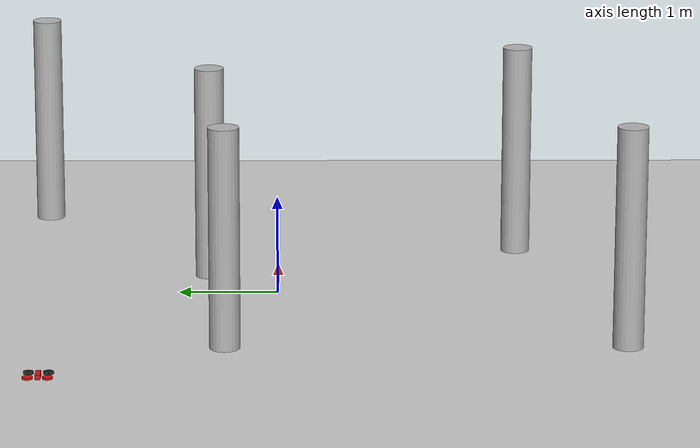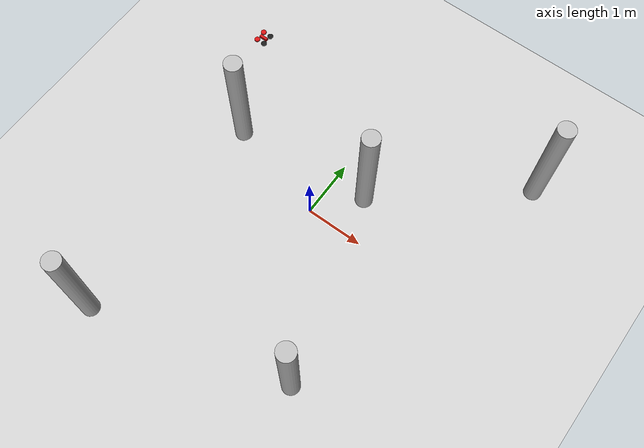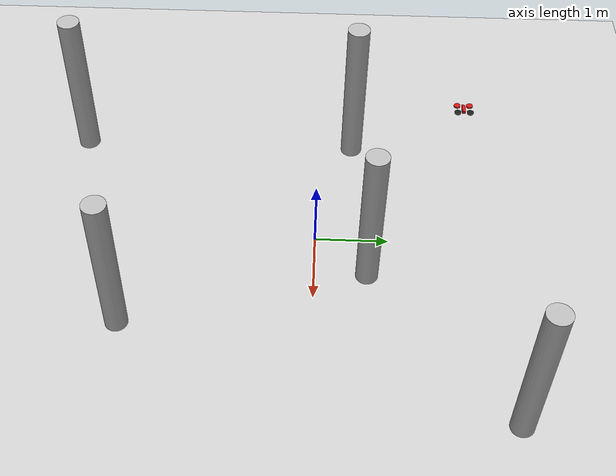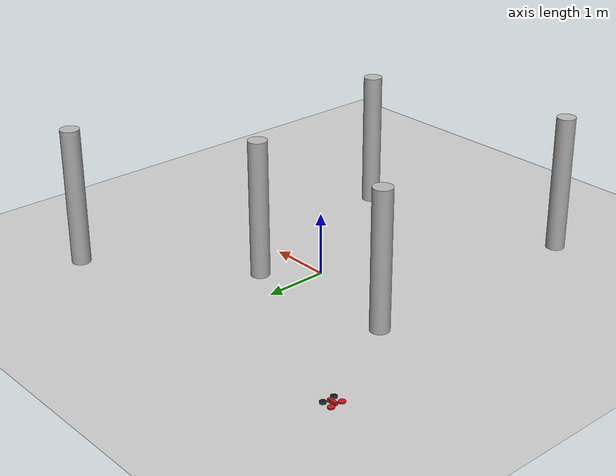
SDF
<sdf version="1.6">
 <world name="cyberzoo">
  <physics name="default_physics" default="0" type="ode">
   <max_step_size>0.001</max_step_size>
   <real_time_update_rate>0</real_time_update_rate>
   <real_time_factor>1</real_time_factor>
  </physics>
  <scene>
   <ambient>0.9 0.9 0.9 1</ambient>
   <background>0.7 0.7 0.7 1</background>
   <origin_visual>0</origin_visual>
   <shadows>0</shadows>
  </scene>
  <spherical_coordinates>
   <surface_model>EARTH_WGS84</surface_model>
   <latitude_deg>51.9906</latitude_deg>
   <longitude_deg>4.37679</longitude_deg>
   <elevation>45.11</elevation>
   <heading_deg>180</heading_deg>
  </spherical_coordinates>
  <model name="ground_plane">
   <static>1</static>
   <link name="link">
    <collision name="collision">
     <geometry><plane><normal>0 0 1</normal><size>100 100</size></plane></geometry>
     <surface>
      <contact><collide_bitmask>65535</collide_bitmask></contact>
      <friction><ode><mu>100</mu><mu2>50</mu2></ode></friction>
     </surface>
    </collision>
    <visual name="visual">
     <cast_shadows>0</cast_shadows>
     <geometry><plane><normal>0 0 1</normal><size>100 100</size></plane></geometry>
     <material>
      <script><uri>file://media/materials/scripts/gazebo.material</uri><name>Gazebo/Grey</name></script>
     </material>
    </visual>
   </link>
   <pose>0 0 -0.02 0 -0 0.454</pose>
  </model>
  <model name="orange_pole1">
   <static>1</static>
   <pose>-1.8 -3.4 0 0 -0 0</pose>
   <link name="orange_pole">
    <visual name="pole"><geometry><mesh><uri>model://orange_pole/orange_pole.dae</uri></mesh></geometry></visual>
    <collision name="pole_collision">
     <geometry><mesh><uri>model://orange_pole/orange_pole.dae</uri></mesh></geometry>
    </collision>
   </link>
  </model>
  <model name="orange_pole2">
   <static>1</static>
   <pose>-1.8 0.5 0 0 -0 0</pose>
   <link name="orange_pole">
    <visual name="pole"><geometry><mesh><uri>model://orange_pole/orange_pole.dae</uri></mesh></geometry></visual>
    <collision name="pole_collision">
     <geometry><mesh><uri>model://orange_pole/orange_pole.dae</uri></mesh></geometry>
    </collision>
   </link>
  </model>
  <model name="orange_pole3">
   <static>1</static>
   <pose>0.6 0.7 0 0 -0 0</pose>
   <link name="orange_pole">
    <visual name="pole"><geometry><mesh><uri>model://orange_pole/orange_pole.dae</uri></mesh></geometry></visual>
    <collision name="pole_collision">
     <geometry><mesh><uri>model://orange_pole/orange_pole.dae</uri></mesh></geometry>
    </collision>
   </link>
  </model>
  <model name="orange_pole4">
   <static>1</static>
   <pose>1.5 -2.5 0 0 -0 0</pose>
   <link name="orange_pole">
    <visual name="pole"><geometry><mesh><uri>model://orange_pole/orange_pole.dae</uri></mesh></geometry></visual>
    <collision name="pole_collision">
     <geometry><mesh><uri>model://orange_pole/orange_pole.dae</uri></mesh></geometry>
    </collision>
   </link>
  </model>
  <model name="orange_pole5">
   <static>1</static>
   <pose>2.8 2.5 0 0 -0 0</pose>
   <link name="orange_pole">
    <visual name="pole"><geometry><mesh><uri>model://orange_pole/orange_pole.dae</uri></mesh></geometry></visual>
    <collision name="pole_collision">
     <geometry><mesh><uri>model://orange_pole/orange_pole.dae</uri></mesh></geometry>
    </collision>
   </link>
  </model>
  <gravity>0 0 -9.8</gravity>
  <magnetic_field>6e-06 2.3e-05 -4.2e-05</magnetic_field>
  <atmosphere type="adiabatic"/>
  <model name="bebop">
   <pose>-2.72334 2.23699 0.034741 0.001295 -0 -3.13757</pose>
   <link name="chassis">
    <velocity_decay><linear>0.001</linear></velocity_decay>
    <inertial>
     <mass>0.536</mass>
     <inertia>
      <ixx>0.000906</ixx>
      <iyy>0.001242</iyy>
      <izz>0.002054</izz>
      <ixy>0</ixy>
      <ixz>1.4e-05</ixz>
      <iyz>0</iyz>
     </inertia>
    </inertial>
    <collision name="collision"><geometry><box><size>0.4 0.4 0.05</size></box></geometry></collision>
    <visual name="visual">
     <geometry><box><size>0.15 0.05 0.05</size></box></geometry>
     <material><diffuse>0.82 0.07 0.07 1</diffuse><ambient>0.82 0.07 0.07 1</ambient></material>
    </visual>
    <sensor name="contactsensor" type="contact">
     <contact><collision>collision</collision><topic>__default_topic__</topic></contact>
    </sensor>
   </link>
   <link name="nw_motor">
    <pose>0.077 0.095 0 0 -0 0</pose>
    <inertial>
     <mass>0.01</mass>
     <inertia><ixx>0.0001</ixx><iyy>0.0001</iyy><izz>0.0001</izz><ixy>0</ixy><iyz>0</iyz><ixz>0</ixz></inertia>
    </inertial>
    <visual name="visual">
     <geometry><cylinder><radius>0.05</radius><length>0.02</length></cylinder></geometry>
     <material><diffuse>0.82 0.07 0.07 1</diffuse><ambient>0.82 0.07 0.07 1</ambient></material>
    </visual>
   </link>
   <joint name="nw_motor_joint" type="fixed"><parent>chassis</parent><child>nw_motor</child></joint>
   <link name="se_motor">
    <pose>-0.077 -0.095 0 0 -0 0</pose>
    <inertial>
     <mass>0.01</mass>
     <inertia><ixx>0.0001</ixx><iyy>0.0001</iyy><izz>0.0001</izz><ixy>0</ixy><iyz>0</iyz><ixz>0</ixz></inertia>
    </inertial>
    <visual name="visual">
     <geometry><cylinder><radius>0.05</radius><length>0.02</length></cylinder></geometry>
     <material><diffuse>0.1 0.1 0.1 1</diffuse><ambient>0.1 0.1 0.1 1</ambient></material>
    </visual>
   </link>
   <joint name="se_motor_joint" type="fixed"><parent>chassis</parent><child>se_motor</child></joint>
   <link name="ne_motor">
    <pose>0.077 -0.095 0 0 -0 0</pose>
    <inertial>
     <mass>0.01</mass>
     <inertia><ixx>0.0001</ixx><iyy>0.0001</iyy><izz>0.0001</izz><ixy>0</ixy><iyz>0</iyz><ixz>0</ixz></inertia>
    </inertial>
    <visual name="visual">
     <geometry><cylinder><radius>0.05</radius><length>0.02</length></cylinder></geometry>
     <material><diffuse>0.82 0.07 0.07 1</diffuse><ambient>0.82 0.07 0.07 1</ambient></material>
    </visual>
   </link>
   <joint name="ne_motor_joint" type="fixed"><parent>chassis</parent><child>ne_motor</child></joint>
   <link name="sw_motor">
    <pose>-0.077 0.095 0 0 -0 0</pose>
    <inertial>
     <mass>0.01</mass>
     <inertia><ixx>0.0001</ixx><iyy>0.0001</iyy><izz>0.0001</izz><ixy>0</ixy><iyz>0</iyz><ixz>0</ixz></inertia>
    </inertial>
    <visual name="visual">
     <geometry><cylinder><radius>0.05</radius><length>0.02</length></cylinder></geometry>
     <material><diffuse>0.1 0.1 0.1 1</diffuse><ambient>0.1 0.1 0.1 1</ambient></material>
    </visual>
   </link>
   <joint name="sw_motor_joint" type="fixed"><parent>chassis</parent><child>sw_motor</child></joint>
   <link name="front_camera">
    <pose>0.15 0 0 -1.57 0.33 0</pose>
    <inertial>
     <mass>0.001</mass>
     <inertia><ixx>0.0001</ixx><iyy>0.0001</iyy><izz>0.0001</izz><ixy>0</ixy><iyz>0</iyz><ixz>0</ixz></inertia>
    </inertial>
    <sensor name="front_camera" type="wideanglecamera">
     <update_rate>30</update_rate>
     <camera name="front_camera">
      <image><width>936</width><height>822</height><format>R8G8B8</format></image>
      <horizontal_fov>3</horizontal_fov>
      <lens>
       <type>equisolid_angle</type>
       <scale_to_hfov>1</scale_to_hfov>
       <env_texture_size>512</env_texture_size>
      </lens>
      <clip><near>0.01</near><far>300</far></clip>
      <noise><type>gaussian</type><mean>0</mean><stddev>0.007</stddev></noise>
     </camera>
    </sensor>
   </link>
   <joint name="front_camera_joint" type="fixed"><parent>chassis</parent><child>front_camera</child></joint>
   <link name="bottom_camera">
    <pose>0 0 0 0 1.57 0</pose>
    <inertial>
     <mass>0.001</mass>
     <inertia><ixx>0.0001</ixx><iyy>0.0001</iyy><izz>0.0001</izz><ixy>0</ixy><iyz>0</iyz><ixz>0</ixz></inertia>
    </inertial>
    <sensor name="bottom_camera" type="camera">
     <update_rate>30</update_rate>
     <camera name="bottom_camera">
      <horizontal_fov>0.7175</horizontal_fov>
      <image><width>240</width><height>240</height><format>R8G8B8</format></image>
      <clip><near>0.02</near><far>300</far></clip>
      <noise><type>gaussian</type><mean>0</mean><stddev>0.007</stddev></noise>
     </camera>
    </sensor>
   </link>
   <joint name="bottom_camera_joint" type="fixed"><parent>chassis</parent><child>bottom_camera</child></joint>
  </model>
  <audio><device>default</device></audio>
  <light name="user_spot_light_0" type="spot">
   <pose>-1.62956 -0.481466 1 0 -0 0</pose>
   <diffuse>0.5 0.5 0.5 1</diffuse>
   <specular>0.1 0.1 0.1 1</specular>
   <direction>0 0 -1</direction>
   <attenuation>
    <range>20</range>
    <constant>0.5</constant>
    <linear>0.01</linear>
    <quadratic>0.001</quadratic>
   </attenuation>
   <cast_shadows>0</cast_shadows>
   <spot><inner_angle>0.6</inner_angle><outer_angle>1</outer_angle><falloff>1</falloff></spot>
  </light>
 </world>
</sdf>
